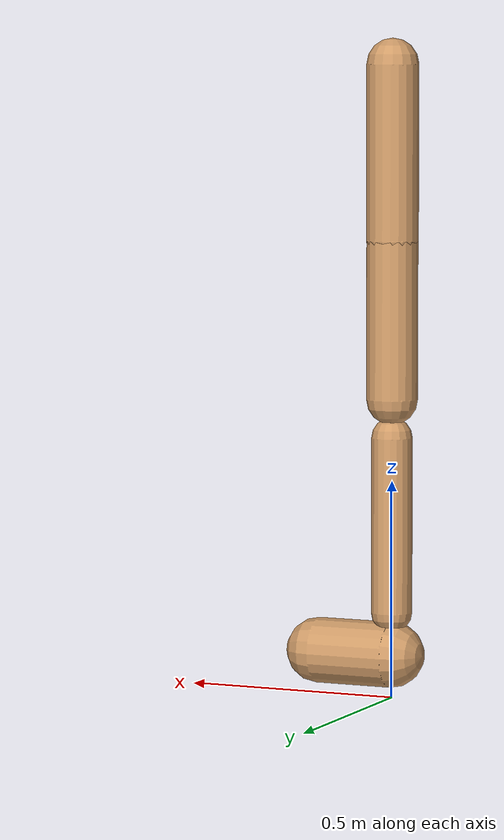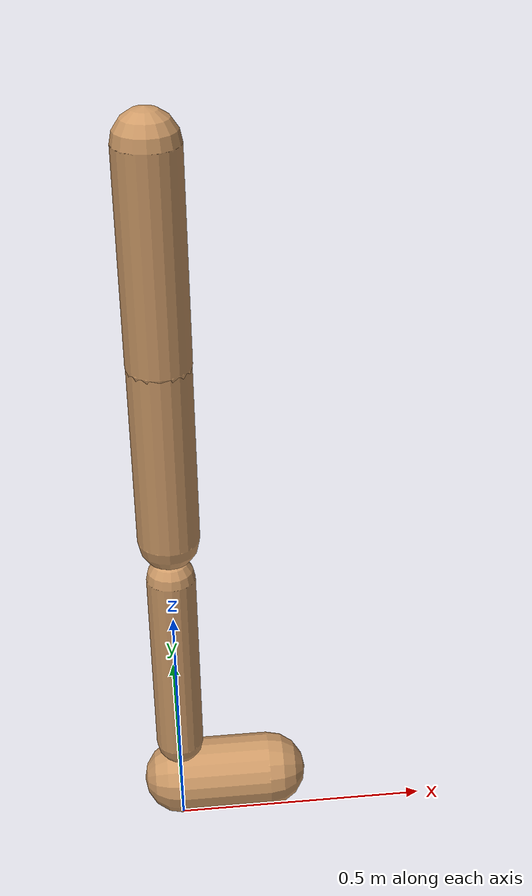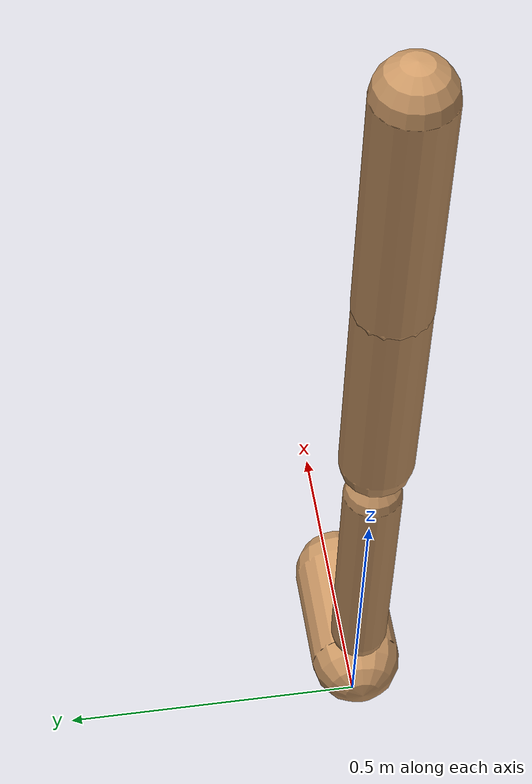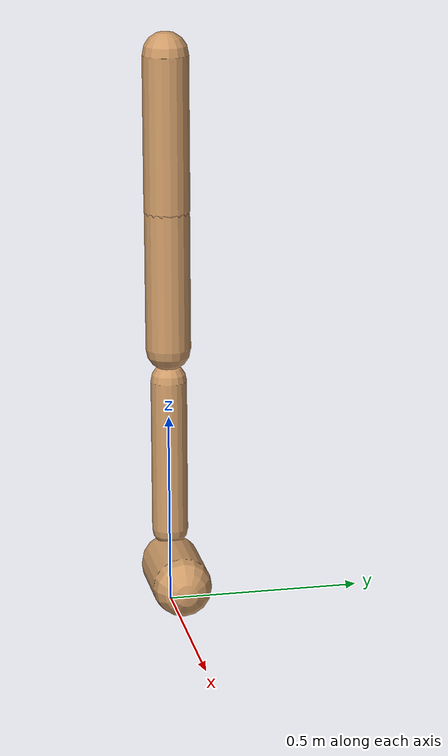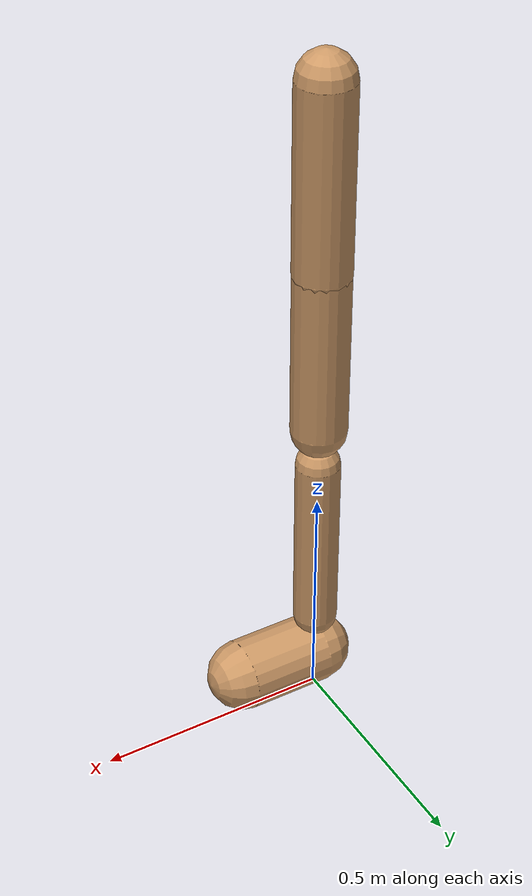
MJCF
<mujoco model="walker2d">
  <compiler angle="degree" coordinate="global" inertiafromgeom="true" />
  <default>
    <joint armature="0.01" damping=".1" limited="true" />
    <geom conaffinity="0" condim="3" contype="1" density="1000" friction="0.8 .1 .1" rgba="0.8 0.6 .4 1" />
  </default>
  <option integrator="RK4" timestep="0.002" />
  <worldbody>

    <body name="torso" pos="0 0 -0.18610936469335188">
      <joint armature="0" axis="1 0 0" damping="0" limited="false" name="ignorex" pos="0 0 0" stiffness="0" type="slide" />
      <joint armature="0" axis="0 0 1" damping="0" limited="false" name="ignorez" pos="0 0 0" ref="1.25" stiffness="0" type="slide" />
      <joint armature="0" axis="0 1 0" damping="0" limited="false" name="ignorey" pos="0 0 0" stiffness="0" type="hinge" />
      <geom fromto="0 0 1.45 0 0 1.05" name="torso_geom" size="0.059610784657887744" type="capsule" />
      <body name="thigh">
        <joint axis="0 -1 0" name="thigh_joint" pos="0 0 1.05" range="-150 0" type="hinge" />
        <geom fromto="0.0 0.0 1.05 0.0 0.0 0.6881570674863245" name="thigh_geom" size="0.058724484792015835" type="capsule" />
        <body name="leg" pos="0.0 0.0 0.08815706748632457">
          <joint axis="0 -1 0" name="leg_joint" pos="0 0 0.6" range="-150 0" type="hinge" />
          <geom fromto="0.0 0.0 0.6 0.0 0.0 0.19795229720702728" name="leg_geom" size="0.04697958783361267" type="capsule" />
          <body name="foot" pos="0.0 0.0 0.09795229720702728">
            <joint axis="0 -1 0" name="foot_joint" pos="0 0 0.1" range="-45 45" type="hinge" />
            <geom fromto="0.0 0.0 0.1 0.17958449470521132 0.0 0.1" name="foot_geom" size="0.07587609778185228" type="capsule" />
          </body>
        </body>
      </body>

      <body name="thigh_left">
        <joint axis="0 -1 0" name="thigh_left_joint" pos="0 0 1.05" range="-150 0" type="hinge" />
        <geom fromto="0.0 0.0 1.05 0.0 0.0 0.6881570674863245" name="thigh_left_geom" rgba=".7 .3 .6 1" size="0.058724484792015835" type="capsule" />
        <body name="leg_left" pos="0.0 0.0 0.08815706748632457">
          <joint axis="0 -1 0" name="leg_left_joint" pos="0 0 0.6" range="-150 0" type="hinge" />
          <geom fromto="0.0 0.0 0.6 0.0 0.0 0.19795229720702728" name="leg_left_geom" rgba=".7 .3 .6 1" size="0.04697958783361267" type="capsule" />
          <body name="foot_left" pos="0.0 0.0 0.09795229720702728">
            <joint axis="0 -1 0" name="foot_left_joint" pos="0 0 0.1" range="-45 45" type="hinge" />
            <geom fromto="0.0 0.0 0.1 0.17958449470521132 0.0 0.1" name="foot_left_geom" rgba=".7 .3 .6 1" size="0.07587609778185228" type="capsule" />
          </body>
        </body>
      </body>
    </body>
  </worldbody>
  <actuator>

    <motor ctrllimited="true" ctrlrange="-1.0 1.0" gear="100" joint="thigh_joint" />
    <motor ctrllimited="true" ctrlrange="-1.0 1.0" gear="100" joint="leg_joint" />
    <motor ctrllimited="true" ctrlrange="-1.0 1.0" gear="100" joint="foot_joint" />
    <motor ctrllimited="true" ctrlrange="-1.0 1.0" gear="100" joint="thigh_left_joint" />
    <motor ctrllimited="true" ctrlrange="-1.0 1.0" gear="100" joint="leg_left_joint" />
    <motor ctrllimited="true" ctrlrange="-1.0 1.0" gear="100" joint="foot_left_joint" />

  </actuator>
</mujoco>
